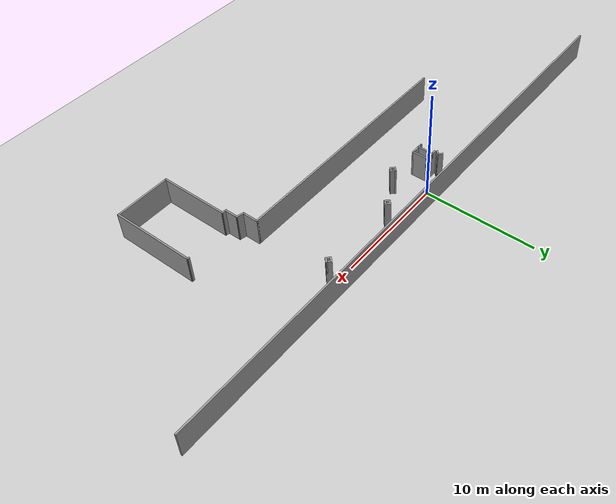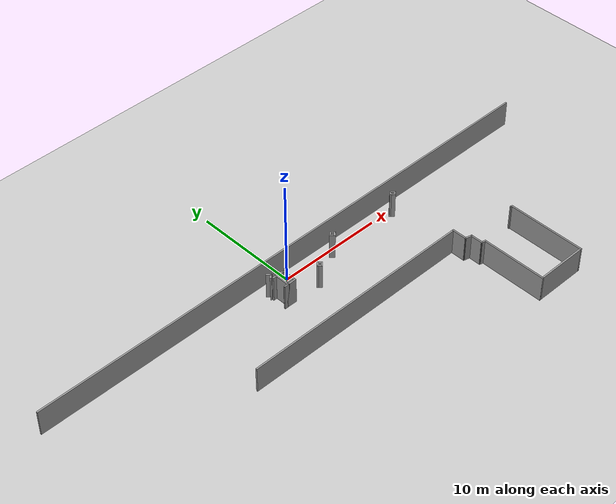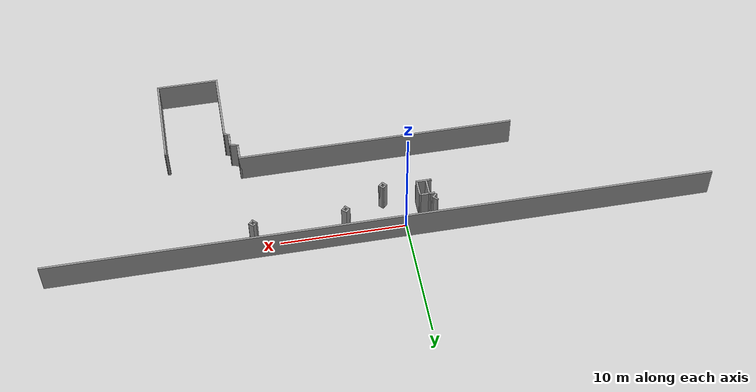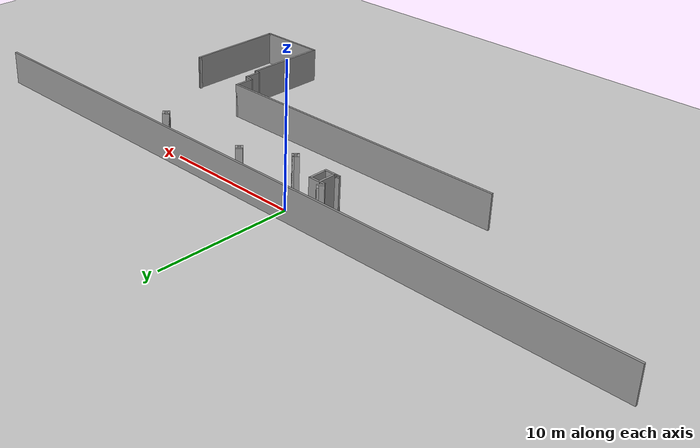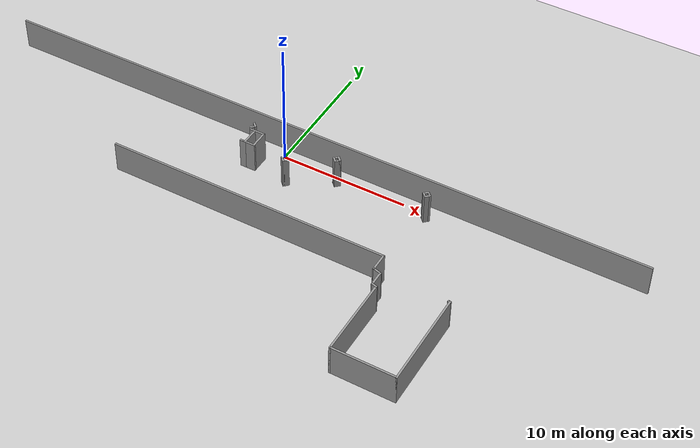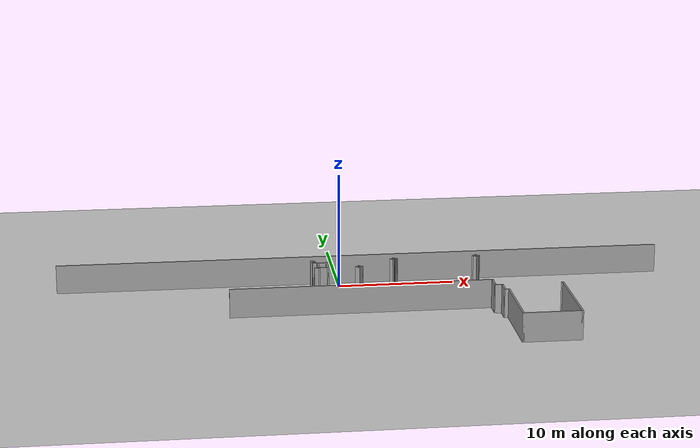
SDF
<sdf version="1.6">
 <world name="default">
  <model name="ground_plane">
   <static>1</static>
   <link name="link">
    <collision name="collision">
     <geometry><plane><normal>0 0 1</normal><size>100 100</size></plane></geometry>
     <surface><friction><ode><mu>100</mu><mu2>50</mu2></ode></friction></surface>
    </collision>
    <visual name="visual">
     <cast_shadows>0</cast_shadows>
     <geometry><plane><normal>0 0 1</normal><size>100 100</size></plane></geometry>
     <material>
      <script><uri>file://media/materials/scripts/gazebo.material</uri><name>Gazebo/Grey</name></script>
     </material>
    </visual>
   </link>
  </model>
  <model name="301_1f_2">
   <pose>0.932725 -1.08367 0 0 -0 0</pose>
   <link name="Wall_144">
    <collision name="Wall_144_Collision">
     <geometry><box><size>0.5 0.15 2.5</size></box></geometry>
     <pose>0 0 1.25 0 -0 0</pose>
    </collision>
    <visual name="Wall_144_Visual">
     <pose>0 0 1.25 0 -0 0</pose>
     <geometry><box><size>0.5 0.15 2.5</size></box></geometry>
     <material>
      <script><uri>file://media/materials/scripts/gazebo.material</uri><name>Gazebo/Grey</name></script>
      <ambient>1 1 1 1</ambient>
     </material>
     <meta><layer>0</layer></meta>
    </visual>
    <pose>10.9112 0.724545 0 0 -0 0.785398</pose>
   </link>
   <link name="Wall_145">
    <collision name="Wall_145_Collision">
     <geometry><box><size>0.5 0.15 2.5</size></box></geometry>
     <pose>0 0 1.25 0 -0 0</pose>
    </collision>
    <visual name="Wall_145_Visual">
     <pose>0 0 1.25 0 -0 0</pose>
     <geometry><box><size>0.5 0.15 2.5</size></box></geometry>
     <material>
      <script><uri>file://media/materials/scripts/gazebo.material</uri><name>Gazebo/Grey</name></script>
      <ambient>1 1 1 1</ambient>
     </material>
     <meta><layer>0</layer></meta>
    </visual>
    <pose>11.1587 0.724545 0 0 -0 -0.785398</pose>
   </link>
   <link name="Wall_146">
    <collision name="Wall_146_Collision">
     <geometry><box><size>0.5 0.15 2.5</size></box></geometry>
     <pose>0 0 1.25 0 -0 0</pose>
    </collision>
    <visual name="Wall_146_Visual">
     <pose>0 0 1.25 0 -0 0</pose>
     <geometry><box><size>0.5 0.15 2.5</size></box></geometry>
     <material>
      <script><uri>file://media/materials/scripts/gazebo.material</uri><name>Gazebo/Grey</name></script>
      <ambient>1 1 1 1</ambient>
     </material>
     <meta><layer>0</layer></meta>
    </visual>
    <pose>11.1587 0.477058 0 0 -0 -2.35619</pose>
   </link>
   <link name="Wall_147">
    <collision name="Wall_147_Collision">
     <geometry><box><size>0.5 0.15 2.5</size></box></geometry>
     <pose>0 0 1.25 0 -0 0</pose>
    </collision>
    <visual name="Wall_147_Visual">
     <pose>0 0 1.25 0 -0 0</pose>
     <geometry><box><size>0.5 0.15 2.5</size></box></geometry>
     <material>
      <script><uri>file://media/materials/scripts/gazebo.material</uri><name>Gazebo/Grey</name></script>
      <ambient>1 1 1 1</ambient>
     </material>
     <meta><layer>0</layer></meta>
    </visual>
    <pose>10.9112 0.477058 0 0 -0 2.35619</pose>
   </link>
   <link name="Wall_149">
    <collision name="Wall_149_Collision">
     <geometry><box><size>0.5 0.15 2.5</size></box></geometry>
     <pose>0 0 1.25 0 -0 0</pose>
    </collision>
    <visual name="Wall_149_Visual">
     <pose>0 0 1.25 0 -0 0</pose>
     <geometry><box><size>0.5 0.15 2.5</size></box></geometry>
     <material>
      <script><uri>file://media/materials/scripts/gazebo.material</uri><name>Gazebo/Grey</name></script>
      <ambient>1 1 1 1</ambient>
     </material>
     <meta><layer>0</layer></meta>
    </visual>
    <pose>3.66994 0.666783 0 0 -0 0.785398</pose>
   </link>
   <link name="Wall_150">
    <collision name="Wall_150_Collision">
     <geometry><box><size>0.5 0.15 2.5</size></box></geometry>
     <pose>0 0 1.25 0 -0 0</pose>
    </collision>
    <visual name="Wall_150_Visual">
     <pose>0 0 1.25 0 -0 0</pose>
     <geometry><box><size>0.5 0.15 2.5</size></box></geometry>
     <material>
      <script><uri>file://media/materials/scripts/gazebo.material</uri><name>Gazebo/Grey</name></script>
      <ambient>1 1 1 1</ambient>
     </material>
     <meta><layer>0</layer></meta>
    </visual>
    <pose>3.91743 0.666783 0 0 -0 -0.785398</pose>
   </link>
   <link name="Wall_153">
    <collision name="Wall_153_Collision">
     <geometry><box><size>0.5 0.15 2.5</size></box></geometry>
     <pose>0 0 1.25 0 -0 0</pose>
    </collision>
    <visual name="Wall_153_Visual">
     <pose>0 0 1.25 0 -0 0</pose>
     <geometry><box><size>0.5 0.15 2.5</size></box></geometry>
     <material>
      <script><uri>file://media/materials/scripts/gazebo.material</uri><name>Gazebo/Grey</name></script>
      <ambient>1 1 1 1</ambient>
     </material>
     <meta><layer>0</layer></meta>
    </visual>
    <pose>3.91743 0.419295 0 0 -0 -2.35619</pose>
   </link>
   <link name="Wall_154">
    <collision name="Wall_154_Collision">
     <geometry><box><size>0.5 0.15 2.5</size></box></geometry>
     <pose>0 0 1.25 0 -0 0</pose>
    </collision>
    <visual name="Wall_154_Visual">
     <pose>0 0 1.25 0 -0 0</pose>
     <geometry><box><size>0.5 0.15 2.5</size></box></geometry>
     <material>
      <script><uri>file://media/materials/scripts/gazebo.material</uri><name>Gazebo/Grey</name></script>
      <ambient>1 1 1 1</ambient>
     </material>
     <meta><layer>0</layer></meta>
    </visual>
    <pose>3.66994 0.419295 0 0 -0 2.35619</pose>
   </link>
   <link name="Wall_156">
    <collision name="Wall_156_Collision">
     <geometry><box><size>0.5 0.15 2.5</size></box></geometry>
     <pose>0 0 1.25 0 -0 0</pose>
    </collision>
    <visual name="Wall_156_Visual">
     <pose>0 0 1.25 0 -0 0</pose>
     <geometry><box><size>0.5 0.15 2.5</size></box></geometry>
     <material>
      <script><uri>file://media/materials/scripts/gazebo.material</uri><name>Gazebo/Grey</name></script>
      <ambient>1 1 1 1</ambient>
     </material>
     <meta><layer>0</layer></meta>
    </visual>
    <pose>0.418336 -1.16799 0 0 -0 0.785398</pose>
   </link>
   <link name="Wall_157">
    <collision name="Wall_157_Collision">
     <geometry><box><size>0.5 0.15 2.5</size></box></geometry>
     <pose>0 0 1.25 0 -0 0</pose>
    </collision>
    <visual name="Wall_157_Visual">
     <pose>0 0 1.25 0 -0 0</pose>
     <geometry><box><size>0.5 0.15 2.5</size></box></geometry>
     <material>
      <script><uri>file://media/materials/scripts/gazebo.material</uri><name>Gazebo/Grey</name></script>
      <ambient>1 1 1 1</ambient>
     </material>
     <meta><layer>0</layer></meta>
    </visual>
    <pose>0.665823 -1.16799 0 0 -0 -0.785398</pose>
   </link>
   <link name="Wall_158">
    <collision name="Wall_158_Collision">
     <geometry><box><size>0.5 0.15 2.5</size></box></geometry>
     <pose>0 0 1.25 0 -0 0</pose>
    </collision>
    <visual name="Wall_158_Visual">
     <pose>0 0 1.25 0 -0 0</pose>
     <geometry><box><size>0.5 0.15 2.5</size></box></geometry>
     <material>
      <script><uri>file://media/materials/scripts/gazebo.material</uri><name>Gazebo/Grey</name></script>
      <ambient>1 1 1 1</ambient>
     </material>
     <meta><layer>0</layer></meta>
    </visual>
    <pose>0.665823 -1.41548 0 0 -0 -2.35619</pose>
   </link>
   <link name="Wall_159">
    <collision name="Wall_159_Collision">
     <geometry><box><size>0.5 0.15 2.5</size></box></geometry>
     <pose>0 0 1.25 0 -0 0</pose>
    </collision>
    <visual name="Wall_159_Visual">
     <pose>0 0 1.25 0 -0 0</pose>
     <geometry><box><size>0.5 0.15 2.5</size></box></geometry>
     <material>
      <script><uri>file://media/materials/scripts/gazebo.material</uri><name>Gazebo/Grey</name></script>
      <ambient>1 1 1 1</ambient>
     </material>
     <meta><layer>0</layer></meta>
    </visual>
    <pose>0.418336 -1.41548 0 0 -0 2.35619</pose>
   </link>
   <link name="Wall_161">
    <collision name="Wall_161_Collision">
     <geometry><box><size>1.25 0.15 2.5</size></box></geometry>
     <pose>0 0 1.25 0 -0 0</pose>
    </collision>
    <visual name="Wall_161_Visual">
     <pose>0 0 1.25 0 -0 0</pose>
     <geometry><box><size>1.25 0.15 2.5</size></box></geometry>
     <material>
      <script><uri>file://media/materials/scripts/gazebo.material</uri><name>Gazebo/Grey</name></script>
      <ambient>1 1 1 1</ambient>
     </material>
     <meta><layer>0</layer></meta>
    </visual>
    <pose>-2.69477 0.153501 0 0 -0 0</pose>
   </link>
   <link name="Wall_162">
    <collision name="Wall_162_Collision">
     <geometry><box><size>1.5 0.15 2.5</size></box></geometry>
     <pose>0 0 1.25 0 -0 0</pose>
    </collision>
    <visual name="Wall_162_Visual">
     <pose>0 0 1.25 0 -0 0</pose>
     <geometry><box><size>1.5 0.15 2.5</size></box></geometry>
     <material>
      <script><uri>file://media/materials/scripts/gazebo.material</uri><name>Gazebo/Grey</name></script>
      <ambient>1 1 1 1</ambient>
     </material>
     <meta><layer>0</layer></meta>
    </visual>
    <pose>-2.14477 -0.521499 0 0 -0 -1.5708</pose>
   </link>
   <link name="Wall_163">
    <collision name="Wall_163_Collision">
     <geometry><box><size>1.25 0.15 2.5</size></box></geometry>
     <pose>0 0 1.25 0 -0 0</pose>
    </collision>
    <visual name="Wall_163_Visual">
     <pose>0 0 1.25 0 -0 0</pose>
     <geometry><box><size>1.25 0.15 2.5</size></box></geometry>
     <material>
      <script><uri>file://media/materials/scripts/gazebo.material</uri><name>Gazebo/Grey</name></script>
      <ambient>1 1 1 1</ambient>
     </material>
     <meta><layer>0</layer></meta>
    </visual>
    <pose>-2.69477 -1.1965 0 0 -0 3.14159</pose>
   </link>
   <link name="Wall_164">
    <collision name="Wall_164_Collision">
     <geometry><box><size>0.5 0.15 2.5</size></box></geometry>
     <pose>0 0 1.25 0 -0 0</pose>
    </collision>
    <visual name="Wall_164_Visual">
     <pose>0 0 1.25 0 -0 0</pose>
     <geometry><box><size>0.5 0.15 2.5</size></box></geometry>
     <material>
      <script><uri>file://media/materials/scripts/gazebo.material</uri><name>Gazebo/Grey</name></script>
      <ambient>1 1 1 1</ambient>
     </material>
     <meta><layer>0</layer></meta>
    </visual>
    <pose>-3.06977 -1.1965 0 0 -0 0</pose>
   </link>
   <link name="Wall_165">
    <collision name="Wall_165_Collision">
     <geometry><box><size>1.5 0.15 2.5</size></box></geometry>
     <pose>0 0 1.25 0 -0 0</pose>
    </collision>
    <visual name="Wall_165_Visual">
     <pose>0 0 1.25 0 -0 0</pose>
     <geometry><box><size>1.5 0.15 2.5</size></box></geometry>
     <material>
      <script><uri>file://media/materials/scripts/gazebo.material</uri><name>Gazebo/Grey</name></script>
      <ambient>1 1 1 1</ambient>
     </material>
     <meta><layer>0</layer></meta>
    </visual>
    <pose>-2.89477 -0.521499 0 0 -0 1.5708</pose>
   </link>
   <link name="Wall_168">
    <collision name="Wall_168_Collision">
     <geometry><box><size>0.5 0.15 2.5</size></box></geometry>
     <pose>0 0 1.25 0 -0 0</pose>
    </collision>
    <visual name="Wall_168_Visual">
     <pose>0 0 1.25 0 -0 0</pose>
     <geometry><box><size>0.5 0.15 2.5</size></box></geometry>
     <material>
      <script><uri>file://media/materials/scripts/gazebo.material</uri><name>Gazebo/Grey</name></script>
      <ambient>1 1 1 1</ambient>
     </material>
     <meta><layer>0</layer></meta>
    </visual>
    <pose>-3.24813 0.694163 0 0 -0 -0.785398</pose>
   </link>
   <link name="Wall_169">
    <collision name="Wall_169_Collision">
     <geometry><box><size>0.5 0.15 2.5</size></box></geometry>
     <pose>0 0 1.25 0 -0 0</pose>
    </collision>
    <visual name="Wall_169_Visual">
     <pose>0 0 1.25 0 -0 0</pose>
     <geometry><box><size>0.5 0.15 2.5</size></box></geometry>
     <material>
      <script><uri>file://media/materials/scripts/gazebo.material</uri><name>Gazebo/Grey</name></script>
      <ambient>1 1 1 1</ambient>
     </material>
     <meta><layer>0</layer></meta>
    </visual>
    <pose>-3.24813 0.446676 0 0 -0 -2.35619</pose>
   </link>
   <link name="Wall_29">
    <collision name="Wall_29_Collision">
     <geometry><box><size>22.25 0.15 2.5</size></box></geometry>
     <pose>0 0 1.25 0 -0 0</pose>
    </collision>
    <visual name="Wall_29_Visual">
     <pose>0 0 1.25 0 -0 0</pose>
     <geometry><box><size>22.25 0.15 2.5</size></box></geometry>
     <material>
      <script><uri>file://media/materials/scripts/gazebo.material</uri><name>Gazebo/Grey</name></script>
      <ambient>1 1 1 1</ambient>
     </material>
     <meta><layer>0</layer></meta>
    </visual>
    <pose>0.220294 -6.14764 0 0 -0 0</pose>
   </link>
   <link name="Wall_31">
    <collision name="Wall_31_Collision">
     <geometry><box><size>1.5 0.15 2.5</size></box></geometry>
     <pose>0 0 1.25 0 -0 0</pose>
    </collision>
    <visual name="Wall_31_Visual">
     <pose>0 0 1.25 0 -0 0</pose>
     <geometry><box><size>1.5 0.15 2.5</size></box></geometry>
     <material>
      <script><uri>file://media/materials/scripts/gazebo.material</uri><name>Gazebo/Grey</name></script>
      <ambient>1 1 1 1</ambient>
     </material>
     <meta><layer>0</layer></meta>
    </visual>
    <pose>11.2703 -6.82264 0 0 -0 -1.5708</pose>
   </link>
   <link name="Wall_32">
    <collision name="Wall_32_Collision">
     <geometry><box><size>0.75 0.15 2.5</size></box></geometry>
     <pose>0 0 1.25 0 -0 0</pose>
    </collision>
    <visual name="Wall_32_Visual">
     <pose>0 0 1.25 0 -0 0</pose>
     <geometry><box><size>0.75 0.15 2.5</size></box></geometry>
     <material>
      <script><uri>file://media/materials/scripts/gazebo.material</uri><name>Gazebo/Grey</name></script>
      <ambient>1 1 1 1</ambient>
     </material>
     <meta><layer>0</layer></meta>
    </visual>
    <pose>11.5601 -7.57528 0 0 -0 -0.261799</pose>
   </link>
   <link name="Wall_33">
    <collision name="Wall_33_Collision">
     <geometry><box><size>1.25 0.15 2.5</size></box></geometry>
     <pose>0 0 1.25 0 -0 0</pose>
    </collision>
    <visual name="Wall_33_Visual">
     <pose>0 0 1.25 0 -0 0</pose>
     <geometry><box><size>1.25 0.15 2.5</size></box></geometry>
     <material>
      <script><uri>file://media/materials/scripts/gazebo.material</uri><name>Gazebo/Grey</name></script>
      <ambient>1 1 1 1</ambient>
     </material>
     <meta><layer>0</layer></meta>
    </visual>
    <pose>11.8498 -8.20293 0 0 -0 -1.5708</pose>
   </link>
   <link name="Wall_34">
    <collision name="Wall_34_Collision">
     <geometry><box><size>0.5 0.15 2.5</size></box></geometry>
     <pose>0 0 1.25 0 -0 0</pose>
    </collision>
    <visual name="Wall_34_Visual">
     <pose>0 0 1.25 0 -0 0</pose>
     <geometry><box><size>0.5 0.15 2.5</size></box></geometry>
     <material>
      <script><uri>file://media/materials/scripts/gazebo.material</uri><name>Gazebo/Grey</name></script>
      <ambient>1 1 1 1</ambient>
     </material>
     <meta><layer>0</layer></meta>
    </visual>
    <pose>12.0189 -8.79822 0 0 -0 -0.261799</pose>
   </link>
   <link name="Wall_35">
    <collision name="Wall_35_Collision">
     <geometry><box><size>6.25 0.15 2.5</size></box></geometry>
     <pose>0 0 1.25 0 -0 0</pose>
    </collision>
    <visual name="Wall_35_Visual">
     <pose>0 0 1.25 0 -0 0</pose>
     <geometry><box><size>6.25 0.15 2.5</size></box></geometry>
     <material>
      <script><uri>file://media/materials/scripts/gazebo.material</uri><name>Gazebo/Grey</name></script>
      <ambient>1 1 1 1</ambient>
     </material>
     <meta><layer>0</layer></meta>
    </visual>
    <pose>12.1879 -11.8935 0 0 -0 -1.5708</pose>
   </link>
   <link name="Wall_36">
    <collision name="Wall_36_Collision">
     <geometry><box><size>5 0.15 2.5</size></box></geometry>
     <pose>0 0 1.25 0 -0 0</pose>
    </collision>
    <visual name="Wall_36_Visual">
     <pose>0 0 1.25 0 -0 0</pose>
     <geometry><box><size>5 0.15 2.5</size></box></geometry>
     <material>
      <script><uri>file://media/materials/scripts/gazebo.material</uri><name>Gazebo/Grey</name></script>
      <ambient>1 1 1 1</ambient>
     </material>
     <meta><layer>0</layer></meta>
    </visual>
    <pose>14.6129 -14.9435 0 0 -0 0</pose>
   </link>
   <link name="Wall_37">
    <collision name="Wall_37_Collision">
     <geometry><box><size>7.5 0.15 2.5</size></box></geometry>
     <pose>0 0 1.25 0 -0 0</pose>
    </collision>
    <visual name="Wall_37_Visual">
     <pose>0 0 1.25 0 -0 0</pose>
     <geometry><box><size>7.5 0.15 2.5</size></box></geometry>
     <material>
      <script><uri>file://media/materials/scripts/gazebo.material</uri><name>Gazebo/Grey</name></script>
      <ambient>1 1 1 1</ambient>
     </material>
     <meta><layer>0</layer></meta>
    </visual>
    <pose>17.0379 -11.2685 0 0 -0 1.5708</pose>
   </link>
   <link name="Wall_39">
    <collision name="Wall_39_Collision">
     <geometry><box><size>0.25 0.15 2.5</size></box></geometry>
     <pose>0 0 1.25 0 -0 0</pose>
    </collision>
    <visual name="Wall_39_Visual">
     <pose>0 0 1.25 0 -0 0</pose>
     <geometry><box><size>0.25 0.15 2.5</size></box></geometry>
     <material>
      <script><uri>file://media/materials/scripts/gazebo.material</uri><name>Gazebo/Grey</name></script>
      <ambient>1 1 1 1</ambient>
     </material>
     <meta><layer>0</layer></meta>
    </visual>
    <pose>16.9896 -7.58057 0 0 -0 2.87979</pose>
   </link>
   <link name="Wall_90">
    <collision name="Wall_90_Collision">
     <geometry><box><size>52.75 0.15 2.5</size></box></geometry>
     <pose>0 0 1.25 0 -0 0</pose>
    </collision>
    <visual name="Wall_90_Visual">
     <pose>0 0 1.25 0 -0 0</pose>
     <geometry><box><size>52.75 0.15 2.5</size></box></geometry>
     <material>
      <script><uri>file://media/materials/scripts/gazebo.material</uri><name>Gazebo/Grey</name></script>
      <ambient>1 1 1 1</ambient>
     </material>
     <meta><layer>0</layer></meta>
    </visual>
    <pose>1.04458 1.99725 0 0 -0 3.14159</pose>
   </link>
   <static>1</static>
  </model>
  <model name="walls"><static>1</static></model>
 </world>
</sdf>
